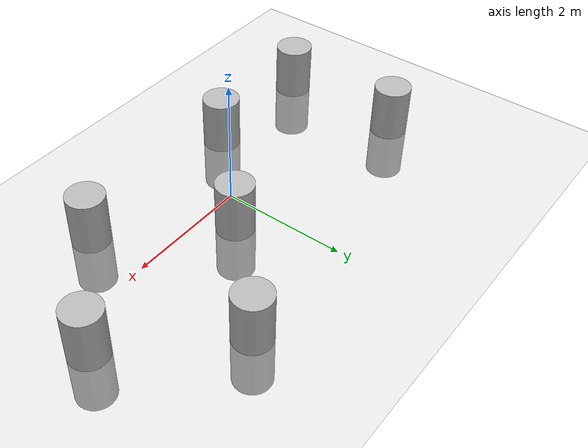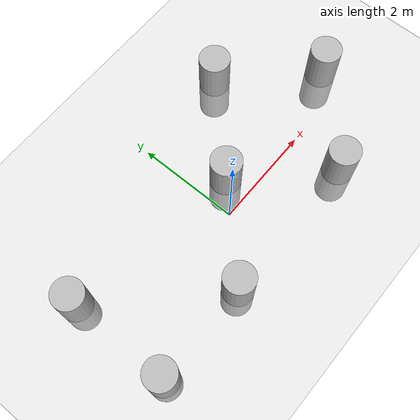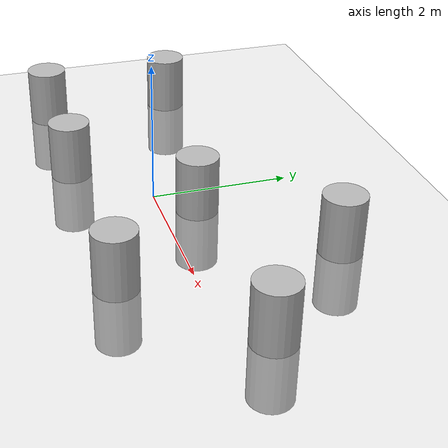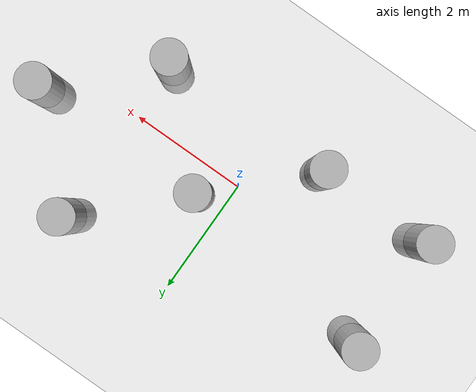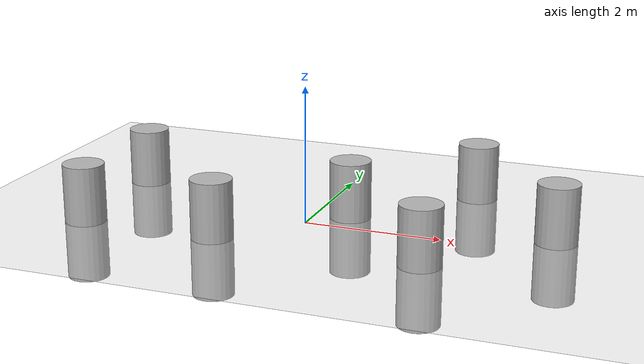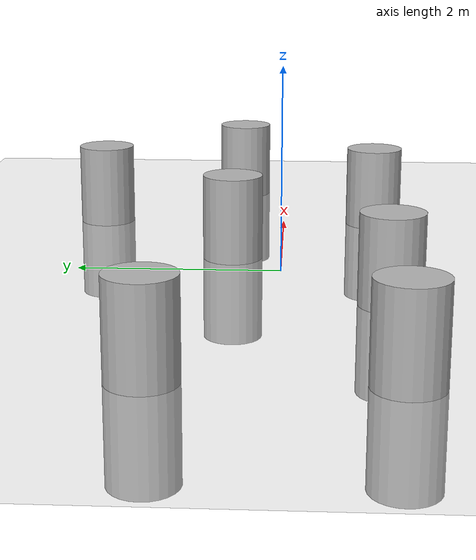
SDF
<sdf version="1.6">
 <world name="default">
  <include><uri>model://sun</uri></include>
  <include><uri>model://ground_plane</uri></include>
  <physics type="ode">
   <real_time_update_rate>1000.0</real_time_update_rate>
   <max_step_size>0.001</max_step_size>
   <real_time_factor>1</real_time_factor>
   <ode>
    <solver>
     <type>quick</type>
     <iters>150</iters>
     <precon_iters>0</precon_iters>
     <sor>1.400000</sor>
     <use_dynamic_moi_rescaling>1</use_dynamic_moi_rescaling>
    </solver>
    <constraints>
     <cfm>0.00001</cfm>
     <erp>0.2</erp>
     <contact_max_correcting_vel>2000.000000</contact_max_correcting_vel>
     <contact_surface_layer>0.01000</contact_surface_layer>
    </constraints>
   </ode>
  </physics>
  <model name="human_cylinder1">
   <pose>2.0 -1.0 0 0 0 0</pose>
   <link name="link">
    <inertial>
     <mass>70</mass>
     <inertia>
      <ixx>0.166667</ixx>
      <ixy>0</ixy>
      <ixz>0</ixz>
      <iyy>0.166667</iyy>
      <iyz>0</iyz>
      <izz>0.166667</izz>
     </inertia>
    </inertial>
    <collision name="collision">
     <geometry><cylinder><radius>0.3</radius><length>1.7</length></cylinder></geometry>
    </collision>
    <visual name="visual">
     <geometry><cylinder><radius>0.3</radius><length>1.7</length></cylinder></geometry>
    </visual>
   </link>
  </model>
  <model name="human_cylinder2">
   <pose>-1 -1 0 0 0 0</pose>
   <link name="link">
    <inertial>
     <mass>70</mass>
     <inertia>
      <ixx>0.166667</ixx>
      <ixy>0</ixy>
      <ixz>0</ixz>
      <iyy>0.166667</iyy>
      <iyz>0</iyz>
      <izz>0.166667</izz>
     </inertia>
    </inertial>
    <collision name="collision">
     <geometry><cylinder><radius>0.3</radius><length>1.7</length></cylinder></geometry>
    </collision>
    <visual name="visual">
     <geometry><cylinder><radius>0.3</radius><length>1.7</length></cylinder></geometry>
    </visual>
   </link>
  </model>
  <model name="human_cylinder3">
   <pose>-3.0 1.0 0 0 0 0</pose>
   <link name="link">
    <inertial>
     <mass>70</mass>
     <inertia>
      <ixx>0.166667</ixx>
      <ixy>0</ixy>
      <ixz>0</ixz>
      <iyy>0.166667</iyy>
      <iyz>0</iyz>
      <izz>0.166667</izz>
     </inertia>
    </inertial>
    <collision name="collision">
     <geometry><cylinder><radius>0.3</radius><length>1.7</length></cylinder></geometry>
    </collision>
    <visual name="visual">
     <geometry><cylinder><radius>0.3</radius><length>1.7</length></cylinder></geometry>
    </visual>
   </link>
  </model>
  <model name="human_cylinder4">
   <pose>0.5 0.5 0 0 0 0</pose>
   <link name="link">
    <inertial>
     <mass>70</mass>
     <inertia>
      <ixx>0.166667</ixx>
      <ixy>0</ixy>
      <ixz>0</ixz>
      <iyy>0.166667</iyy>
      <iyz>0</iyz>
      <izz>0.166667</izz>
     </inertia>
    </inertial>
    <collision name="collision">
     <geometry><cylinder><radius>0.3</radius><length>1.7</length></cylinder></geometry>
    </collision>
    <visual name="visual">
     <geometry><cylinder><radius>0.3</radius><length>1.7</length></cylinder></geometry>
    </visual>
   </link>
  </model>
  <model name="human_cylinder5">
   <pose>-3.0 -1.0 0 0 0 0</pose>
   <link name="link">
    <inertial>
     <mass>70</mass>
     <inertia>
      <ixx>0.166667</ixx>
      <ixy>0</ixy>
      <ixz>0</ixz>
      <iyy>0.166667</iyy>
      <iyz>0</iyz>
      <izz>0.166667</izz>
     </inertia>
    </inertial>
    <collision name="collision">
     <geometry><cylinder><radius>0.3</radius><length>1.7</length></cylinder></geometry>
    </collision>
    <visual name="visual">
     <geometry><cylinder><radius>0.3</radius><length>1.7</length></cylinder></geometry>
    </visual>
   </link>
  </model>
  <model name="human_cylinder6">
   <pose>3.5 0.5 0 0 0 0</pose>
   <link name="link">
    <inertial>
     <mass>70</mass>
     <inertia>
      <ixx>0.166667</ixx>
      <ixy>0</ixy>
      <ixz>0</ixz>
      <iyy>0.166667</iyy>
      <iyz>0</iyz>
      <izz>0.166667</izz>
     </inertia>
    </inertial>
    <collision name="collision">
     <geometry><cylinder><radius>0.3</radius><length>1.7</length></cylinder></geometry>
    </collision>
    <visual name="visual">
     <geometry><cylinder><radius>0.3</radius><length>1.7</length></cylinder></geometry>
    </visual>
   </link>
  </model>
  <model name="human_cylinder7">
   <pose>2.0 2.0 0 0 0 0</pose>
   <link name="link">
    <inertial>
     <mass>70</mass>
     <inertia>
      <ixx>0.166667</ixx>
      <ixy>0</ixy>
      <ixz>0</ixz>
      <iyy>0.166667</iyy>
      <iyz>0</iyz>
      <izz>0.166667</izz>
     </inertia>
    </inertial>
    <collision name="collision">
     <geometry><cylinder><radius>0.3</radius><length>1.7</length></cylinder></geometry>
    </collision>
    <visual name="visual">
     <geometry><cylinder><radius>0.3</radius><length>1.7</length></cylinder></geometry>
    </visual>
   </link>
  </model>
  <scene><ambient>0.4 0.4 0.4 1</ambient><background>0.7 0.7 0.7 1</background><shadows>true</shadows></scene>
 </world>
</sdf>
